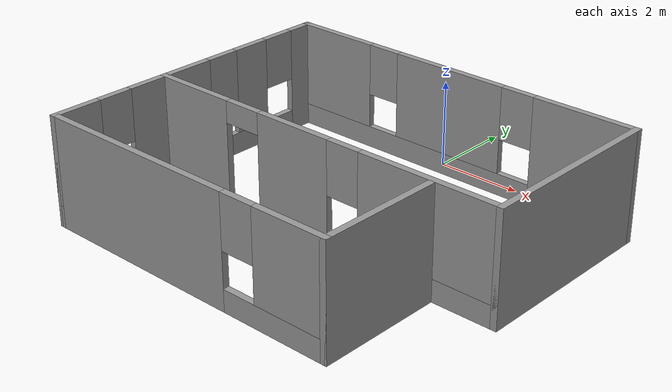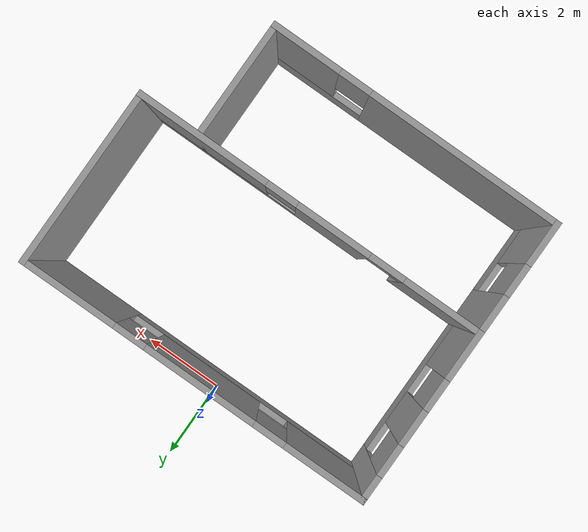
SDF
<?xml version='1.0'?>
<sdf version='1.7'>
  <model name='Wall'>
    <pose>0.515 -3.7975 0 0 -0 0</pose>
    <link name='Wall_0'>
      <pose>-4.425 1.3025 0 0 -0 -1.5708</pose>
      <visual name='Wall_0_Visual_0'>
        <pose>-1.90146 0 1.25 0 -0 0</pose>
        <geometry>
          <box>
            <size>0.697073 0.15 2.5</size>
          </box>
        </geometry>
        <material>
          <script>
            <uri>file://media/materials/scripts/gazebo.material</uri>
            <name>Gazebo/Grey</name>
          </script>
          <ambient>1 1 1 1</ambient>
        </material>
        <meta>
          <layer>0</layer>
        </meta>
      </visual>
      <collision name='Wall_0_Collision_0'>
        <geometry>
          <box>
            <size>0.697073 0.15 2.5</size>
          </box>
        </geometry>
        <pose>-1.90146 0 1.25 0 -0 0</pose>
      </collision>
      <visual name='Wall_0_Visual_1'>
        <pose>0.348536 0 0.25 0 -0 0</pose>
        <geometry>
          <box>
            <size>3.80293 0.15 0.5</size>
          </box>
        </geometry>
        <material>
          <script>
            <uri>file://media/materials/scripts/gazebo.material</uri>
            <name>Gazebo/Grey</name>
          </script>
          <ambient>1 1 1 1</ambient>
        </material>
        <meta>
          <layer>0</layer>
        </meta>
      </visual>
      <collision name='Wall_0_Collision_1'>
        <geometry>
          <box>
            <size>3.80293 0.15 0.5</size>
          </box>
        </geometry>
        <pose>0.348536 0 0.25 0 -0 0</pose>
      </collision>
      <visual name='Wall_0_Visual_2'>
        <pose>-0.295914 0 1.5 0 -0 0</pose>
        <geometry>
          <box>
            <size>0.914026 0.15 2</size>
          </box>
        </geometry>
        <material>
          <script>
            <uri>file://media/materials/scripts/gazebo.material</uri>
            <name>Gazebo/Grey</name>
          </script>
          <ambient>1 1 1 1</ambient>
        </material>
        <meta>
          <layer>0</layer>
        </meta>
      </visual>
      <collision name='Wall_0_Collision_2'>
        <geometry>
          <box>
            <size>0.914026 0.15 2</size>
          </box>
        </geometry>
        <pose>-0.295914 0 1.5 0 -0 0</pose>
      </collision>
      <visual name='Wall_0_Visual_3'>
        <pose>1.60555 0 1.5 0 -0 0</pose>
        <geometry>
          <box>
            <size>1.2889 0.15 2</size>
          </box>
        </geometry>
        <material>
          <script>
            <uri>file://media/materials/scripts/gazebo.material</uri>
            <name>Gazebo/Grey</name>
          </script>
          <ambient>1 1 1 1</ambient>
        </material>
        <meta>
          <layer>0</layer>
        </meta>
      </visual>
      <collision name='Wall_0_Collision_3'>
        <geometry>
          <box>
            <size>1.2889 0.15 2</size>
          </box>
        </geometry>
        <pose>1.60555 0 1.5 0 -0 0</pose>
      </collision>
      <visual name='Wall_0_Visual_4'>
        <pose>-1.15293 0 1.9 0 -0 0</pose>
        <geometry>
          <box>
            <size>0.8 0.15 1.2</size>
          </box>
        </geometry>
        <material>
          <script>
            <uri>file://media/materials/scripts/gazebo.material</uri>
            <name>Gazebo/Grey</name>
          </script>
          <ambient>1 1 1 1</ambient>
        </material>
        <meta>
          <layer>0</layer>
        </meta>
      </visual>
      <collision name='Wall_0_Collision_4'>
        <geometry>
          <box>
            <size>0.8 0.15 1.2</size>
          </box>
        </geometry>
        <pose>-1.15293 0 1.9 0 -0 0</pose>
      </collision>
      <visual name='Wall_0_Visual_5'>
        <pose>0.561099 0 1.9 0 -0 0</pose>
        <geometry>
          <box>
            <size>0.8 0.15 1.2</size>
          </box>
        </geometry>
        <material>
          <script>
            <uri>file://media/materials/scripts/gazebo.material</uri>
            <name>Gazebo/Grey</name>
          </script>
          <ambient>1 1 1 1</ambient>
        </material>
        <meta>
          <layer>0</layer>
        </meta>
      </visual>
      <collision name='Wall_0_Collision_5'>
        <geometry>
          <box>
            <size>0.8 0.15 1.2</size>
          </box>
        </geometry>
        <pose>0.561099 0 1.9 0 -0 0</pose>
      </collision>
    </link>
    <link name='Wall_1'>
      <pose>0 -0.8725 0 0 -0 0</pose>
      <visual name='Wall_1_Visual_0'>
        <pose>-3.4775 0 1.25 0 -0 0</pose>
        <geometry>
          <box>
            <size>2.045 0.15 2.5</size>
          </box>
        </geometry>
        <material>
          <script>
            <uri>file://media/materials/scripts/gazebo.material</uri>
            <name>Gazebo/Grey</name>
          </script>
          <ambient>1 1 1 1</ambient>
        </material>
        <meta>
          <layer>0</layer>
        </meta>
      </visual>
      <collision name='Wall_1_Collision_0'>
        <geometry>
          <box>
            <size>2.045 0.15 2.5</size>
          </box>
        </geometry>
        <pose>-3.4775 0 1.25 0 -0 0</pose>
      </collision>
      <visual name='Wall_1_Visual_1'>
        <pose>-0.608606 0 1.25 0 -0 0</pose>
        <geometry>
          <box>
            <size>1.89279 0.15 2.5</size>
          </box>
        </geometry>
        <material>
          <script>
            <uri>file://media/materials/scripts/gazebo.material</uri>
            <name>Gazebo/Grey</name>
          </script>
          <ambient>1 1 1 1</ambient>
        </material>
        <meta>
          <layer>0</layer>
        </meta>
      </visual>
      <collision name='Wall_1_Collision_1'>
        <geometry>
          <box>
            <size>1.89279 0.15 2.5</size>
          </box>
        </geometry>
        <pose>-0.608606 0 1.25 0 -0 0</pose>
      </collision>
      <visual name='Wall_1_Visual_2'>
        <pose>2.41889 0 0.25 0 -0 0</pose>
        <geometry>
          <box>
            <size>4.16221 0.15 0.5</size>
          </box>
        </geometry>
        <material>
          <script>
            <uri>file://media/materials/scripts/gazebo.material</uri>
            <name>Gazebo/Grey</name>
          </script>
          <ambient>1 1 1 1</ambient>
        </material>
        <meta>
          <layer>0</layer>
        </meta>
      </visual>
      <collision name='Wall_1_Collision_2'>
        <geometry>
          <box>
            <size>4.16221 0.15 0.5</size>
          </box>
        </geometry>
        <pose>2.41889 0 0.25 0 -0 0</pose>
      </collision>
      <visual name='Wall_1_Visual_3'>
        <pose>2.81889 0 1.5 0 -0 0</pose>
        <geometry>
          <box>
            <size>3.36221 0.15 2</size>
          </box>
        </geometry>
        <material>
          <script>
            <uri>file://media/materials/scripts/gazebo.material</uri>
            <name>Gazebo/Grey</name>
          </script>
          <ambient>1 1 1 1</ambient>
        </material>
        <meta>
          <layer>0</layer>
        </meta>
      </visual>
      <collision name='Wall_1_Collision_3'>
        <geometry>
          <box>
            <size>3.36221 0.15 2</size>
          </box>
        </geometry>
        <pose>2.81889 0 1.5 0 -0 0</pose>
      </collision>
      <visual name='Wall_1_Visual_4'>
        <pose>0.737788 0 1.9 0 -0 0</pose>
        <geometry>
          <box>
            <size>0.8 0.15 1.2</size>
          </box>
        </geometry>
        <material>
          <script>
            <uri>file://media/materials/scripts/gazebo.material</uri>
            <name>Gazebo/Grey</name>
          </script>
          <ambient>1 1 1 1</ambient>
        </material>
        <meta>
          <layer>0</layer>
        </meta>
      </visual>
      <collision name='Wall_1_Collision_4'>
        <geometry>
          <box>
            <size>0.8 0.15 1.2</size>
          </box>
        </geometry>
        <pose>0.737788 0 1.9 0 -0 0</pose>
      </collision>
      <visual name='Wall_1_Visual_5'>
        <pose>-2.005 0 2.25 0 -0 0</pose>
        <geometry>
          <box>
            <size>0.9 0.15 0.5</size>
          </box>
        </geometry>
        <material>
          <script>
            <uri>file://media/materials/scripts/gazebo.material</uri>
            <name>Gazebo/Grey</name>
          </script>
          <ambient>1 1 1 1</ambient>
        </material>
        <meta>
          <layer>0</layer>
        </meta>
      </visual>
      <collision name='Wall_1_Collision_5'>
        <geometry>
          <box>
            <size>0.9 0.15 0.5</size>
          </box>
        </geometry>
        <pose>-2.005 0 2.25 0 -0 0</pose>
      </collision>
    </link>
    <link name='Wall_2'>
      <collision name='Wall_2_Collision'>
        <geometry>
          <box>
            <size>4.5 0.15 2.5</size>
          </box>
        </geometry>
        <pose>0 0 1.25 0 -0 0</pose>
      </collision>
      <visual name='Wall_2_Visual'>
        <pose>0 0 1.25 0 -0 0</pose>
        <geometry>
          <box>
            <size>4.5 0.15 2.5</size>
          </box>
        </geometry>
        <material>
          <script>
            <uri>file://media/materials/scripts/gazebo.material</uri>
            <name>Gazebo/Grey</name>
          </script>
          <ambient>1 1 1 1</ambient>
        </material>
        <meta>
          <layer>0</layer>
        </meta>
      </visual>
      <pose>4.425 1.3025 0 0 -0 1.5708</pose>
    </link>
    <link name='Wall_3'>
      <pose>0 3.4775 0 0 -0 3.14159</pose>
      <visual name='Wall_3_Visual_0'>
        <pose>-3.27364 0 1.25 0 -0 0</pose>
        <geometry>
          <box>
            <size>2.45273 0.15 2.5</size>
          </box>
        </geometry>
        <material>
          <script>
            <uri>file://media/materials/scripts/gazebo.material</uri>
            <name>Gazebo/Grey</name>
          </script>
          <ambient>1 1 1 1</ambient>
        </material>
        <meta>
          <layer>0</layer>
        </meta>
      </visual>
      <collision name='Wall_3_Collision_0'>
        <geometry>
          <box>
            <size>2.45273 0.15 2.5</size>
          </box>
        </geometry>
        <pose>-3.27364 0 1.25 0 -0 0</pose>
      </collision>
      <visual name='Wall_3_Visual_1'>
        <pose>1.22636 0 0.25 0 -0 0</pose>
        <geometry>
          <box>
            <size>6.54727 0.15 0.5</size>
          </box>
        </geometry>
        <material>
          <script>
            <uri>file://media/materials/scripts/gazebo.material</uri>
            <name>Gazebo/Grey</name>
          </script>
          <ambient>1 1 1 1</ambient>
        </material>
        <meta>
          <layer>0</layer>
        </meta>
      </visual>
      <collision name='Wall_3_Collision_1'>
        <geometry>
          <box>
            <size>6.54727 0.15 0.5</size>
          </box>
        </geometry>
        <pose>1.22636 0 0.25 0 -0 0</pose>
      </collision>
      <visual name='Wall_3_Visual_2'>
        <pose>0.171695 0 1.5 0 -0 0</pose>
        <geometry>
          <box>
            <size>2.83793 0.15 2</size>
          </box>
        </geometry>
        <material>
          <script>
            <uri>file://media/materials/scripts/gazebo.material</uri>
            <name>Gazebo/Grey</name>
          </script>
          <ambient>1 1 1 1</ambient>
        </material>
        <meta>
          <layer>0</layer>
        </meta>
      </visual>
      <collision name='Wall_3_Collision_2'>
        <geometry>
          <box>
            <size>2.83793 0.15 2</size>
          </box>
        </geometry>
        <pose>0.171695 0 1.5 0 -0 0</pose>
      </collision>
      <visual name='Wall_3_Visual_3'>
        <pose>3.44533 0 1.5 0 -0 0</pose>
        <geometry>
          <box>
            <size>2.10934 0.15 2</size>
          </box>
        </geometry>
        <material>
          <script>
            <uri>file://media/materials/scripts/gazebo.material</uri>
            <name>Gazebo/Grey</name>
          </script>
          <ambient>1 1 1 1</ambient>
        </material>
        <meta>
          <layer>0</layer>
        </meta>
      </visual>
      <collision name='Wall_3_Collision_3'>
        <geometry>
          <box>
            <size>2.10934 0.15 2</size>
          </box>
        </geometry>
        <pose>3.44533 0 1.5 0 -0 0</pose>
      </collision>
      <visual name='Wall_3_Visual_4'>
        <pose>-1.64727 0 1.9 0 -0 0</pose>
        <geometry>
          <box>
            <size>0.8 0.15 1.2</size>
          </box>
        </geometry>
        <material>
          <script>
            <uri>file://media/materials/scripts/gazebo.material</uri>
            <name>Gazebo/Grey</name>
          </script>
          <ambient>1 1 1 1</ambient>
        </material>
        <meta>
          <layer>0</layer>
        </meta>
      </visual>
      <collision name='Wall_3_Collision_4'>
        <geometry>
          <box>
            <size>0.8 0.15 1.2</size>
          </box>
        </geometry>
        <pose>-1.64727 0 1.9 0 -0 0</pose>
      </collision>
      <visual name='Wall_3_Visual_5'>
        <pose>1.99066 0 1.9 0 -0 0</pose>
        <geometry>
          <box>
            <size>0.8 0.15 1.2</size>
          </box>
        </geometry>
        <material>
          <script>
            <uri>file://media/materials/scripts/gazebo.material</uri>
            <name>Gazebo/Grey</name>
          </script>
          <ambient>1 1 1 1</ambient>
        </material>
        <meta>
          <layer>0</layer>
        </meta>
      </visual>
      <collision name='Wall_3_Collision_5'>
        <geometry>
          <box>
            <size>0.8 0.15 1.2</size>
          </box>
        </geometry>
        <pose>1.99066 0 1.9 0 -0 0</pose>
      </collision>
    </link>
    <link name='Wall_5'>
      <pose>-4.425 -2.2975 0 0 -0 -1.5708</pose>
      <visual name='Wall_5_Visual_0'>
        <pose>-0.97405 0 1.25 0 -0 0</pose>
        <geometry>
          <box>
            <size>1.0519 0.15 2.5</size>
          </box>
        </geometry>
        <material>
          <script>
            <uri>file://media/materials/scripts/gazebo.material</uri>
            <name>Gazebo/Grey</name>
          </script>
          <ambient>1 1 1 1</ambient>
        </material>
        <meta>
          <layer>0</layer>
        </meta>
      </visual>
      <collision name='Wall_5_Collision_0'>
        <geometry>
          <box>
            <size>1.0519 0.15 2.5</size>
          </box>
        </geometry>
        <pose>-0.97405 0 1.25 0 -0 0</pose>
      </collision>
      <visual name='Wall_5_Visual_1'>
        <pose>0.52595 0 0.25 0 -0 0</pose>
        <geometry>
          <box>
            <size>1.9481 0.15 0.5</size>
          </box>
        </geometry>
        <material>
          <script>
            <uri>file://media/materials/scripts/gazebo.material</uri>
            <name>Gazebo/Grey</name>
          </script>
          <ambient>1 1 1 1</ambient>
        </material>
        <meta>
          <layer>0</layer>
        </meta>
      </visual>
      <collision name='Wall_5_Collision_1'>
        <geometry>
          <box>
            <size>1.9481 0.15 0.5</size>
          </box>
        </geometry>
        <pose>0.52595 0 0.25 0 -0 0</pose>
      </collision>
      <visual name='Wall_5_Visual_2'>
        <pose>0.92595 0 1.5 0 -0 0</pose>
        <geometry>
          <box>
            <size>1.1481 0.15 2</size>
          </box>
        </geometry>
        <material>
          <script>
            <uri>file://media/materials/scripts/gazebo.material</uri>
            <name>Gazebo/Grey</name>
          </script>
          <ambient>1 1 1 1</ambient>
        </material>
        <meta>
          <layer>0</layer>
        </meta>
      </visual>
      <collision name='Wall_5_Collision_2'>
        <geometry>
          <box>
            <size>1.1481 0.15 2</size>
          </box>
        </geometry>
        <pose>0.92595 0 1.5 0 -0 0</pose>
      </collision>
      <visual name='Wall_5_Visual_3'>
        <pose>-0.0481 0 1.9 0 -0 0</pose>
        <geometry>
          <box>
            <size>0.8 0.15 1.2</size>
          </box>
        </geometry>
        <material>
          <script>
            <uri>file://media/materials/scripts/gazebo.material</uri>
            <name>Gazebo/Grey</name>
          </script>
          <ambient>1 1 1 1</ambient>
        </material>
        <meta>
          <layer>0</layer>
        </meta>
      </visual>
      <collision name='Wall_5_Collision_3'>
        <geometry>
          <box>
            <size>0.8 0.15 1.2</size>
          </box>
        </geometry>
        <pose>-0.0481 0 1.9 0 -0 0</pose>
      </collision>
    </link>
    <link name='Wall_6'>
      <pose>-0.75 -3.7225 0 0 -0 0</pose>
      <visual name='Wall_6_Visual_0'>
        <pose>-1.28738 0 1.25 0 -0 0</pose>
        <geometry>
          <box>
            <size>4.92524 0.15 2.5</size>
          </box>
        </geometry>
        <material>
          <script>
            <uri>file://media/materials/scripts/gazebo.material</uri>
            <name>Gazebo/Grey</name>
          </script>
          <ambient>1 1 1 1</ambient>
        </material>
        <meta>
          <layer>0</layer>
        </meta>
      </visual>
      <collision name='Wall_6_Collision_0'>
        <geometry>
          <box>
            <size>4.92524 0.15 2.5</size>
          </box>
        </geometry>
        <pose>-1.28738 0 1.25 0 -0 0</pose>
      </collision>
      <visual name='Wall_6_Visual_1'>
        <pose>2.46262 0 0.25 0 -0 0</pose>
        <geometry>
          <box>
            <size>2.57476 0.15 0.5</size>
          </box>
        </geometry>
        <material>
          <script>
            <uri>file://media/materials/scripts/gazebo.material</uri>
            <name>Gazebo/Grey</name>
          </script>
          <ambient>1 1 1 1</ambient>
        </material>
        <meta>
          <layer>0</layer>
        </meta>
      </visual>
      <collision name='Wall_6_Collision_1'>
        <geometry>
          <box>
            <size>2.57476 0.15 0.5</size>
          </box>
        </geometry>
        <pose>2.46262 0 0.25 0 -0 0</pose>
      </collision>
      <visual name='Wall_6_Visual_2'>
        <pose>2.86262 0 1.5 0 -0 0</pose>
        <geometry>
          <box>
            <size>1.77476 0.15 2</size>
          </box>
        </geometry>
        <material>
          <script>
            <uri>file://media/materials/scripts/gazebo.material</uri>
            <name>Gazebo/Grey</name>
          </script>
          <ambient>1 1 1 1</ambient>
        </material>
        <meta>
          <layer>0</layer>
        </meta>
      </visual>
      <collision name='Wall_6_Collision_2'>
        <geometry>
          <box>
            <size>1.77476 0.15 2</size>
          </box>
        </geometry>
        <pose>2.86262 0 1.5 0 -0 0</pose>
      </collision>
      <visual name='Wall_6_Visual_3'>
        <pose>1.57524 0 1.9 0 -0 0</pose>
        <geometry>
          <box>
            <size>0.8 0.15 1.2</size>
          </box>
        </geometry>
        <material>
          <script>
            <uri>file://media/materials/scripts/gazebo.material</uri>
            <name>Gazebo/Grey</name>
          </script>
          <ambient>1 1 1 1</ambient>
        </material>
        <meta>
          <layer>0</layer>
        </meta>
      </visual>
      <collision name='Wall_6_Collision_3'>
        <geometry>
          <box>
            <size>0.8 0.15 1.2</size>
          </box>
        </geometry>
        <pose>1.57524 0 1.9 0 -0 0</pose>
      </collision>
    </link>
    <link name='Wall_7'>
      <collision name='Wall_7_Collision'>
        <geometry>
          <box>
            <size>3 0.15 2.5</size>
          </box>
        </geometry>
        <pose>0 0 1.25 0 -0 0</pose>
      </collision>
      <visual name='Wall_7_Visual'>
        <pose>0 0 1.25 0 -0 0</pose>
        <geometry>
          <box>
            <size>3 0.15 2.5</size>
          </box>
        </geometry>
        <material>
          <script>
            <uri>file://media/materials/scripts/gazebo.material</uri>
            <name>Gazebo/Grey</name>
          </script>
          <ambient>1 1 1 1</ambient>
        </material>
        <meta>
          <layer>0</layer>
        </meta>
      </visual>
      <pose>2.925 -2.2975 0 0 -0 1.5708</pose>
    </link>
    <static>1</static>
  </model>
</sdf>
